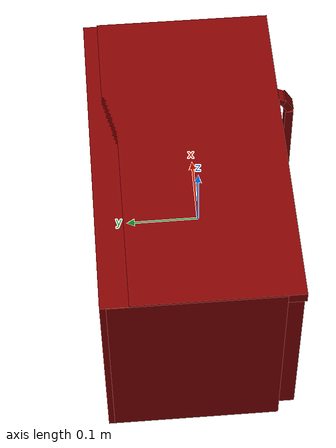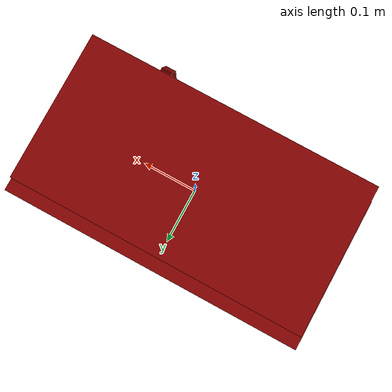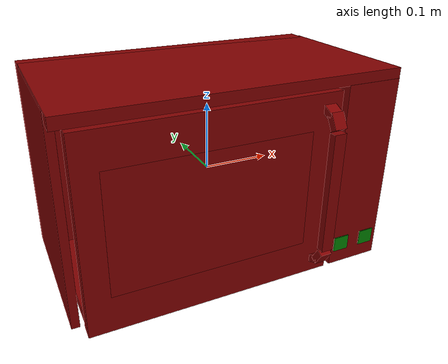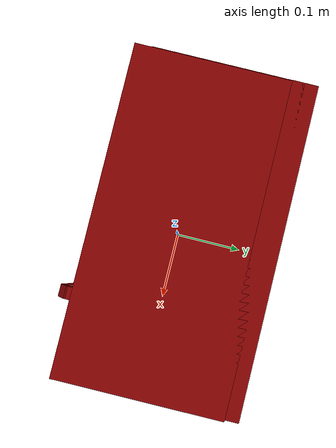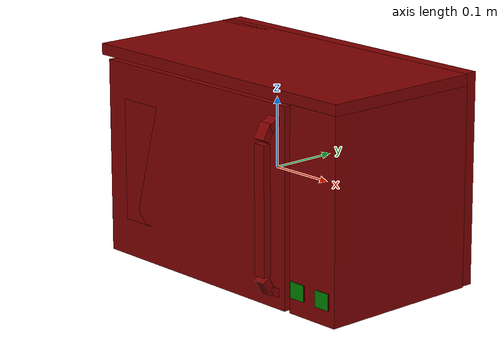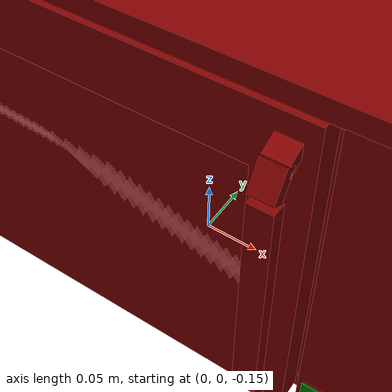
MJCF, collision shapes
<?xml version='1.0' encoding='UTF-8'?>
<mujoco model="model">
  <option timestep="0.002" gravity="0.0 0.0 -9.81"/>
  <compiler angle="radian"/>
  <asset>
    <mesh file="visuals/door.obj" name="door_vis"/>
    <mesh file="visuals/door_Clear.obj" name="door_Clear_vis"/>
    <mesh file="visuals/Body001.obj" name="Body001_vis"/>
    <mesh file="visuals/Button001.obj" name="Button001_vis"/>
    <mesh file="visuals/Button002.obj" name="Button002_vis"/>
    <mesh file="visuals/Disc001.obj" name="Disc001_vis"/>
    <texture file="visuals/T_BC001.png" name="Body001_material" type="2d"/>
    <material name="Body001_material" rgba="1 1 1 1.0" texture="Body001_material" shininess="0.4472135901451111" specular="2"/>
    <texture file="visuals/T_BC001.png" name="door_material" type="2d"/>
    <material name="door_material" rgba="1 1 1 1.0" texture="door_material" shininess="0.4472135901451111" specular="2"/>
    <texture file="visuals/T_BC001.png" name="door_Clear_material" type="2d"/>
    <material name="door_Clear_material" rgba="1 1 1 0.8187407851219177" texture="door_Clear_material" shininess="0.5" specular="1"/>
    <texture file="visuals/T_BC001.png" name="Button001_material" type="2d"/>
    <material name="Button001_material" rgba="1 1 1 1.0" texture="Button001_material" shininess="0.4472135901451111" specular="0.3103448502657381"/>
    <texture file="visuals/T_BC001.png" name="Button002_material" type="2d"/>
    <material name="Button002_material" rgba="1 1 1 1.0" texture="Button002_material" shininess="0.4472135901451111" specular="0.3103448502657381"/>
    <texture file="visuals/T_BC001.png" name="Disc001_material" type="2d"/>
    <material name="Disc001_material" rgba="1 1 1 1.0" texture="Disc001_material" shininess="0.4472135901451111" specular="3"/>
  </asset>
  <default>
    <default class="visual">
      <geom conaffinity="0" contype="0" group="1" type="mesh"/>
    </default>
    <default class="collision">
      <geom group="0" rgba="0.5 0 0 0.5"/>
    </default>
    <default class="spawn">
      <geom group="0" rgba="1 1 1 0.5" contype="0" conaffinity="0"/>
      <site group="0" rgba="1 1 1 0.5"/>
    </default>
    <default class="region">
      <geom group="1" conaffinity="0" contype="0" rgba="0 1 0 0"/>
    </default>
  </default>
  <worldbody>
    <body>
      <body name="object">
        <geom class="collision" type="box" pos="0.17007075 -0.12074983 -0.11116215" size="0.012575998902320862 0.0005805229884572327 0.01146894134581089" quat="1.0 0.0 0.0 0.0" name="start_button" rgba="0.0 0.5 0 0.5"/>
        <geom class="collision" type="box" pos="0.21674226 -0.12086108 -0.11114740" size="0.012238393537700176 0.0003605964593589306 0.011656123213469982" quat="1.0 0.0 0.0 0.0" name="stop_button" rgba="0.0 0.5 0 0.5"/>
        <geom class="collision" type="cylinder" pos="-0.03171157 0.00879212 -0.12892142" size="0.08991196751594543 0.0011221182066947222" quat="1.0 0.0 0.0 0.0" name="tray" rgba="0 1 0 0.5"/>
        <geom mesh="Body001_vis" type="mesh" solimp="0.998 0.998 0.001" solref="0.001 1" friction="0.95 0.3 0.1" class="visual" material="Body001_material"/>
        <geom class="collision" type="box" pos="-0.23207711 0.02116585 0.00382162" size="0.005712045356631279 0.11463574320077896 0.1494564265012741" quat="1.0 0.0 0.0 0.0"/>
        <geom class="collision" type="box" pos="-0.00137368 0.12540571 0.00427353" size="0.236415296792984 0.018624059855937958 0.14986489713191986" quat="1.0 0.0 0.0 0.0"/>
        <geom class="collision" type="box" pos="0.00050823 0.00342139 0.14608407" size="0.2372807115316391 0.12120231240987778 0.008054380305111408" quat="1.0 0.0 0.0 0.0"/>
        <geom class="collision" type="box" pos="0.14260928 0.01861208 -0.00337857" size="0.01463103573769331 0.11026279628276825 0.1416579782962799" quat="1.0 0.0 0.0 0.0"/>
        <geom class="collision" type="box" pos="0.19554612 0.00360484 -0.00341959" size="0.04215310513973236 0.12173701822757721 0.142355278134346" quat="1.0 0.0 0.0 0.0"/>
        <geom class="collision" type="box" pos="-0.00139835 0.02099579 -0.14715756" size="0.2168455868959427 0.11480613797903061 0.006980889942497015" quat="1.0 0.0 0.0 0.0"/>
        <geom class="collision" type="box" pos="-0.04184945 0.01590441 0.13949636" size="0.17258527874946594 0.10871920734643936 0.006714486051350832" quat="1.0 0.0 0.0 0.0"/>
        <body name="door">
          <joint axis="0.0 0.0 1.0" pos="-0.22719745 -0.10749372 0.00082503" limited="true" name="microjoint" range="-1.5707963267948966 0.0" type="hinge" damping="1" frictionloss="1" armature=".01" stiffness="0.05"/>
          <geom mesh="door_vis" type="mesh" solimp="0.998 0.998 0.001" solref="0.001 1" friction="0.95 0.3 0.1" class="visual" material="door_material"/>
          <geom class="collision" type="box" pos="-0.04360569 -0.10833196 -0.00521404" size="0.14404302835464478 0.009753227233886719 0.08778831362724304" quat="1.0 0.0 0.0 0.0"/>
          <geom class="collision" type="box" pos="0.12385678 -0.13959266 -0.00611055" size="0.009254367090761662 0.00571834109723568 0.09048488736152649" quat="1.0 0.0 0.0 0.0" name="door_handle_main"/>
          <geom class="collision" type="box" pos="0.12341553 -0.12154786 0.10965729" size="0.009255078621208668 0.01179773174226284 0.005450263619422913" quat="9.091202457511827e-08 5.5989822556057334e-08 0.23127900063991547 -0.9728874564170837"/>
          <geom class="collision" type="box" pos="0.12341553 -0.13484219 -0.11076470" size="0.009255078621208668 0.01179773174226284 0.005450263619422913" quat="0.5028786063194275 0.864357054233551 -3.533217522999621e-07 4.3345139033590385e-07"/>
          <geom class="collision" type="box" pos="0.12341553 -0.12154786 -0.12163427" size="0.009255078621208668 0.01179773174226284 0.0054502640850842" quat="0.9728875160217285 -0.23127888143062592 1.331291912265442e-07 9.28578955949888e-08"/>
          <geom class="collision" type="box" pos="0.12341553 -0.13484219 0.09878771" size="0.009255078621208668 0.01179773174226284 0.005450262222439051" quat="5.15381032073492e-07 -2.1250016857266019e-07 -0.8643571734428406 -0.5028783679008484"/>
          <geom class="collision" type="box" pos="-0.03874710 -0.10723436 -0.00615822" size="0.18210770189762115 0.010850824415683746 0.14014343917369843" quat="1.0 0.0 0.0 0.0" name="door_main"/>
          <body name="door_Clear">
            <geom mesh="door_Clear_vis" type="mesh" solimp="0.998 0.998 0.001" solref="0.001 1" friction="0.95 0.3 0.1" class="visual" material="door_Clear_material"/>
            <geom class="collision" type="box" pos="-0.04360569 -0.10833196 -0.00521404" size="0.14404302835464478 0.009753227233886719 0.08778831362724304" quat="1.0 0.0 0.0 0.0"/>
          </body>
        </body>
        <body name="Button001">
          <joint axis="0.0 1.0 0.0" pos="0.16844292 -0.11885886 -0.11178415" limited="true" name="Button001_joint" range="0.0 0.002" type="slide" damping="1" frictionloss="1" armature=".01" stiffness="0.05"/>
          <geom mesh="Button001_vis" type="mesh" solimp="0.998 0.998 0.001" solref="0.001 1" friction="0.95 0.3 0.1" class="visual" material="Button001_material"/>
          <geom class="collision" type="box" pos="0.17009558 -0.11939091 -0.11118577" size="0.012712306343019009 0.0006736558279953897 0.011054715141654015" quat="1.0 0.0 0.0 0.0"/>
        </body>
        <body name="Button002">
          <joint axis="0.0 1.0 0.0" pos="0.21572979 -0.11888489 -0.11150453" limited="true" name="Button002_joint" range="0.0 0.002" type="slide" damping="1" frictionloss="1" armature=".01" stiffness="0.05"/>
          <geom mesh="Button002_vis" type="mesh" solimp="0.998 0.998 0.001" solref="0.001 1" friction="0.95 0.3 0.1" class="visual" material="Button002_material"/>
          <geom class="collision" type="box" pos="0.21661337 -0.11959882 -0.11123415" size="0.012534886598587036 0.0004917804035358131 0.011635356582701206" quat="1.0 0.0 0.0 0.0"/>
        </body>
        <body name="Disc001">
          <joint axis="0.0 0.0 -1.0" pos="-0.03187048 0.00879212 -0.13442262" limited="false" name="Disc001_joint" range="0 360" type="hinge" damping="1" frictionloss="1" armature=".01" stiffness="0.05"/>
          <geom mesh="Disc001_vis" type="mesh" solimp="0.998 0.998 0.001" solref="0.001 1" friction="0.95 0.3 0.1" class="visual" material="Disc001_material"/>
          <geom class="collision" type="cylinder" pos="-0.03171158 0.00835710 -0.13495408" size="0.08953051269054413 0.0026564623694866896" quat="1.9470718370939721e-07 -1.0 0.0 0.0"/>
        </body>
        <geom class="region" name="reg_int" type="box" pos="-0.049192070000000004 0.003478419999999996 0.0008238549999999983" size="0.17422414 0.0987692 0.129623155"/>
        <geom class="region" name="reg_main" type="box" pos="0.0 0.012873500000000003 0.0" size="0.23878893 0.13215588 0.15513845"/>
      <geom class="region" name="reg_tray" type="cylinder" pos="-0.03171157 0.00879212 0.0013238541033473439" size="0.08991196751594543 0.12812315589665263"/></body>
    </body>
  </worldbody>
  <actuator>
    <motor name="microjoint_actuator" joint="microjoint" gear="10"/>
    <motor name="Button001_joint_actuator" joint="Button001_joint" gear="0.5"/>
    <motor name="Button002_joint_actuator" joint="Button002_joint" gear="0.5"/>
    <motor name="Disc001_joint_actuator" joint="Disc001_joint" gear="20"/>
  </actuator>
</mujoco>
